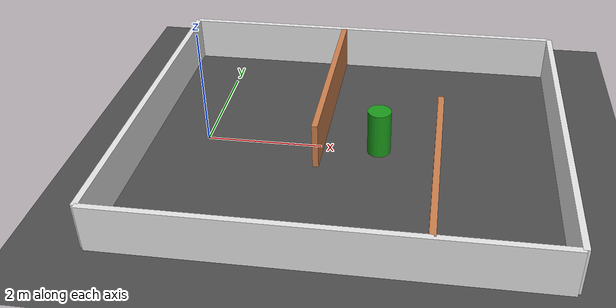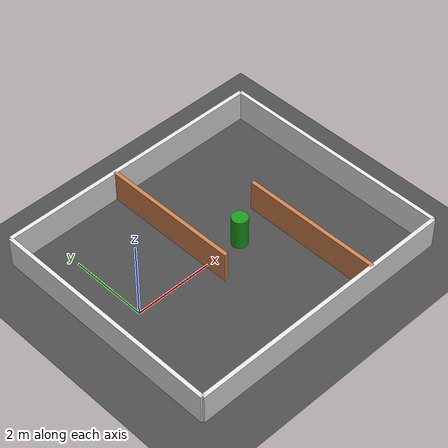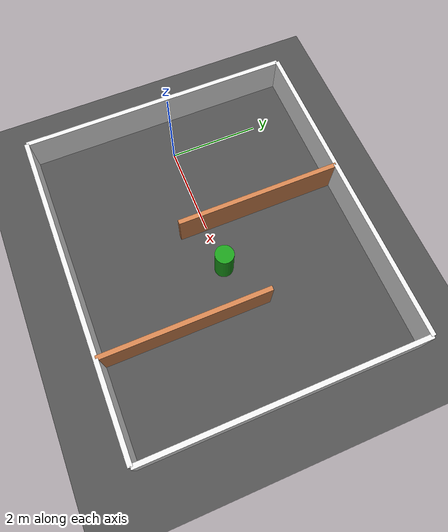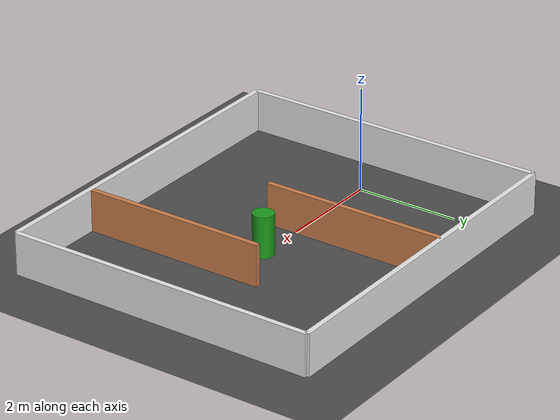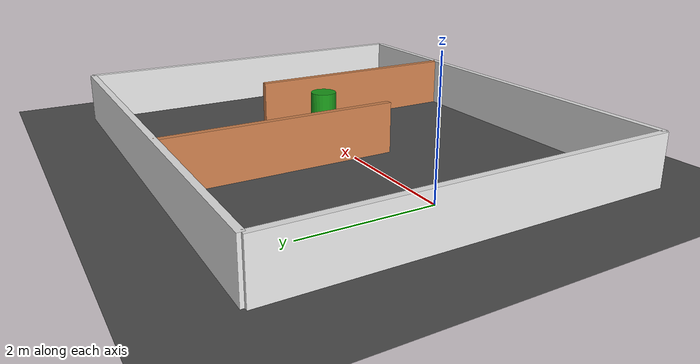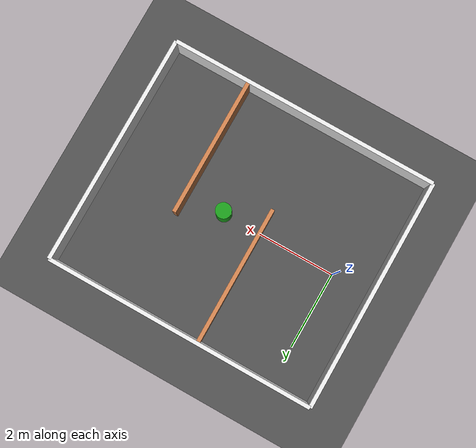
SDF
<?xml version="1.0" ?>
<sdf version="1.8">
    <world name="obstacle_course">
        <!-- Physics Engine Configuration -->
        <physics name="1ms" type="ignored">
            <max_step_size>0.001</max_step_size>
            <real_time_factor>1.0</real_time_factor>
        </physics>

        <plugin filename="gz-sim-physics-system" name="gz::sim::systems::Physics"/>
        <plugin filename="gz-sim-user-commands-system" name="gz::sim::systems::UserCommands"/>
        <plugin filename="gz-sim-scene-broadcaster-system" name="gz::sim::systems::SceneBroadcaster"/>

        <light type="directional" name="sun">
            <cast_shadows>true</cast_shadows>
            <pose>0 0 10 0 0 0</pose>
            <diffuse>0.8 0.8 0.8 1</diffuse>
            <specular>0.2 0.2 0.2 1</specular>
            <direction>-0.5 0.1 -0.9</direction>
        </light>

        <model name="ground_plane">
            <static>true</static>
            <link name="link">
                <collision name="collision">
                    <geometry><plane><normal>0 0 1</normal><size>50 50</size></plane></geometry>
                </collision>
                <visual name="visual">
                    <geometry><plane><normal>0 0 1</normal><size>50 50</size></plane></geometry>
                    <material>
                        <ambient>0.3 0.3 0.3 1</ambient>
                        <diffuse>0.3 0.3 0.3 1</diffuse>
                    </material>
                </visual>
            </link>
        </model>

        <model name="outer_wall_left">
            <pose>2.5 3.0 0.4 0 0 0</pose><static>true</static>
            <link name="l">
                <collision name="c"><geometry><box><size>7.0 0.1 0.8</size></box></geometry></collision>
                <visual name="v"><geometry><box><size>7.0 0.1 0.8</size></box></geometry>
                <material><ambient>0.9 0.9 0.9 1</ambient><diffuse>0.9 0.9 0.9 1</diffuse></material></visual>
            </link>
        </model>

        <model name="outer_wall_right">
            <pose>2.5 -3.0 0.4 0 0 0</pose><static>true</static>
            <link name="l">
                <collision name="c"><geometry><box><size>7.0 0.1 0.8</size></box></geometry></collision>
                <visual name="v"><geometry><box><size>7.0 0.1 0.8</size></box></geometry>
                <material><ambient>0.9 0.9 0.9 1</ambient><diffuse>0.9 0.9 0.9 1</diffuse></material></visual>
            </link>
        </model>

        <model name="back_wall">
            <pose>-1.0 0 0.4 0 0 1.5708</pose><static>true</static>
            <link name="l">
                <collision name="c"><geometry><box><size>6.0 0.1 0.8</size></box></geometry></collision>
                <visual name="v"><geometry><box><size>6.0 0.1 0.8</size></box></geometry>
                <material><ambient>0.9 0.9 0.9 1</ambient><diffuse>0.9 0.9 0.9 1</diffuse></material></visual>
            </link>
        </model>

        <model name="corridor_wall_1">
            <pose>2.0 1.2 0.4 0 0 1.5708</pose><static>true</static>
            <link name="l">
                <collision name="c"><geometry><box><size>3.6 0.1 0.8</size></box></geometry></collision>
                <visual name="v"><geometry><box><size>3.6 0.1 0.8</size></box></geometry>
                <material><ambient>0.8 0.5 0.3 1</ambient><diffuse>0.8 0.5 0.3 1</diffuse></material></visual>
            </link>
        </model>

        <model name="corridor_wall_2">
            <pose>4.0 -1.2 0.4 0 0 1.5708</pose><static>true</static>
            <link name="l">
                <collision name="c"><geometry><box><size>3.6 0.1 0.8</size></box></geometry></collision>
                <visual name="v"><geometry><box><size>3.6 0.1 0.8</size></box></geometry>
                <material><ambient>0.8 0.5 0.3 1</ambient><diffuse>0.8 0.5 0.3 1</diffuse></material></visual>
            </link>
        </model>

        <model name="front_boundary_wall">
            <pose>6.0 0 0.4 0 0 1.5708</pose><static>true</static>
            <link name="l">
                <collision name="c"><geometry><box><size>6.0 0.1 0.8</size></box></geometry></collision>
                <visual name="v"><geometry><box><size>6.0 0.1 0.8</size></box></geometry>
                <material><ambient>0.9 0.9 0.9 1</ambient><diffuse>0.9 0.9 0.9 1</diffuse></material></visual>
            </link>
        </model>

        <model name="indoor_pillar">
            <pose>3.0 0 0.4 0 0 0</pose><static>true</static>
            <link name="l">
                <collision name="c"><geometry><cylinder><radius>0.2</radius><length>0.8</length></cylinder></geometry></collision>
                <visual name="v"><geometry><cylinder><radius>0.2</radius><length>0.8</length></cylinder></geometry>
                <material><ambient>0.1 0.6 0.1 1</ambient><diffuse>0.1 0.6 0.1 1</diffuse></material></visual>
            </link>
        </model>
    </world>
</sdf>
